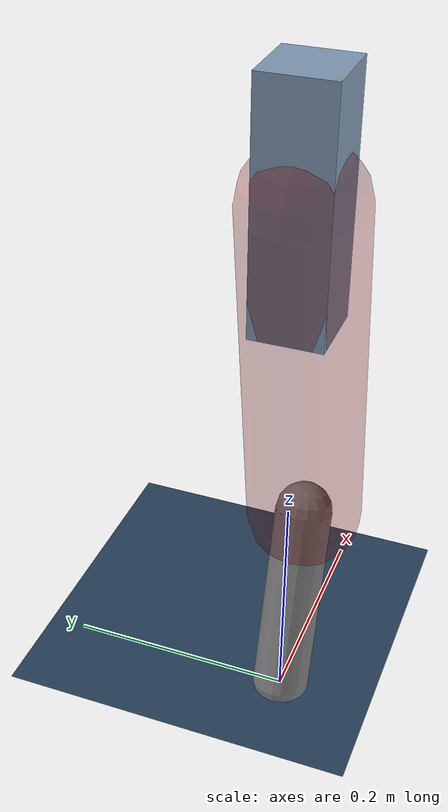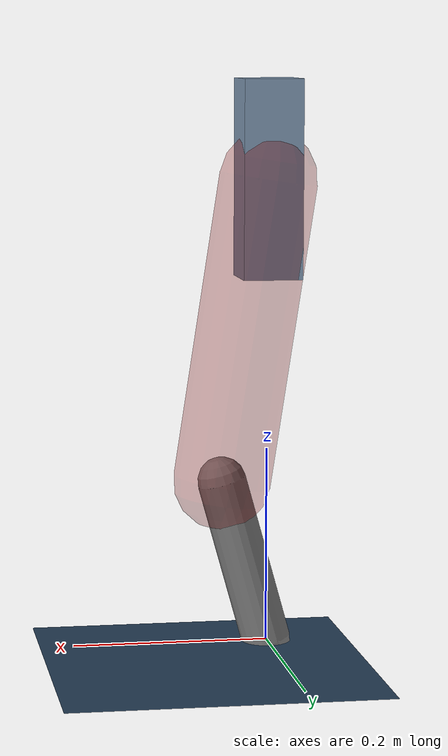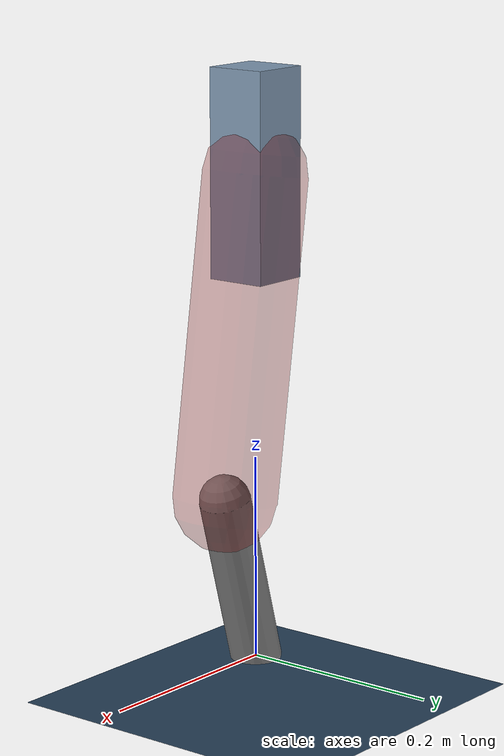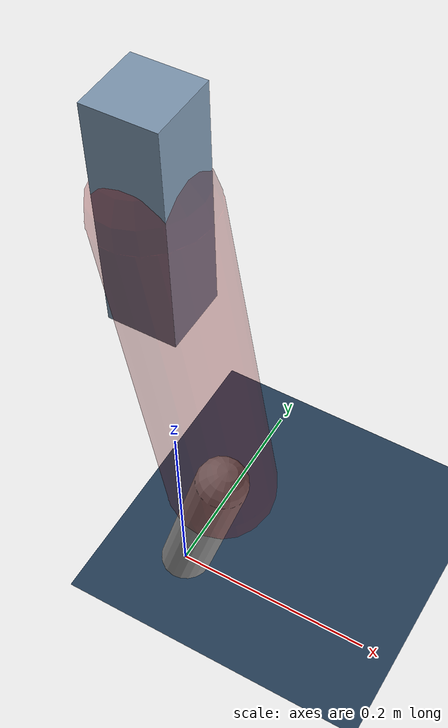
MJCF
<mujoco model="Hopper2D">
	<compiler inertiafromgeom="true" angle="radian" />
	<option timestep="0.001" integrator="implicit" cone="elliptic" solver="Newton" tolerance="1e-10" />

	<default>
		<geom contype="1" conaffinity="1" condim="3" friction="2 0.005 0.0001" solref="0.005 1" />
		<joint limited="true" damping="0.1" />
	</default>

	<asset>
		<texture name="skybox" type="skybox" builtin="gradient" rgb1=".4 .6 .8" rgb2="0 0 0" width="800" height="800" />
		<texture name="grid" type="2d" builtin="checker" rgb1=".1 .2 .3" rgb2=".2 .3 .4" width="300" height="300" mark="edge" markrgb=".2 .3 .4" />
		<material name="ground" texture="grid" texrepeat="1 1" texuniform="true" reflectance="0.1" />
		<material name="leg" rgba="0.5 0.6 0.7 1" />
	</asset>

	<worldbody>

		<geom name="floor" type="plane" size="5 5 0.25" material="ground" />

		<light directional="false" diffuse="0.8 0.8 0.8" specular="0.3 0.3 0.3" pos="0 0 2" dir="0 0 -1" />
		<light mode="targetbodycom" target="base" directional="false" diffuse="0.8 0.8 0.8" specular="0.3 0.3 0.3" pos="0 0 2" dir="0 0 -1" />

		<camera name="fixed" pos="0 -2 1" xyaxes="1 0 0 0 0 1" />
		<camera name="tracking" mode="trackcom" pos="0 -3 1" />

		<body name="root" pos="0 0 0.47575446377573205">
			<joint name="slide_x" type="slide" axis="1 0 0" range="-100 100" />
			<joint name="slide_z" type="slide" axis="0 0 1" range="0 10" />

			<body name="base" pos="0 0 0">
				<geom name="torso" type="box" size="0.03 0.03 0.1" mass="2.668" material="leg" />

				<body name="link1" pos="0 0 0" euler="0 1.4195405110234103 0">
					<joint type="hinge" axis="0 -1 0" pos="0 0 0" name="hinge1" limited="true" range="-3.14 3.14" stiffness="0" damping="0.1" />
					<geom name="thigh" type="capsule" fromto="0 0 0 0.31153363163194525 0 0" size="0.05" rgba="0.5 0 0 0.3" mass="1.0200408054062522" />

					<body name="link2" pos="0.31153363163194525 0 0" euler="0 0.4240657567719835 0">
						<joint type="hinge" axis="0 -1 0" pos="0 0 0" name="hinge2" limited="true" range="-3.14 3.14" stiffness="0" damping="0.1" />
						<geom name="shank" type="capsule" fromto="0 0 0 0.1742208321437868 0 0" size="0.025" mass="0.3788987489294081" />

					</body>
				</body>
			</body>
		</body>
	</worldbody>

	<actuator>
		<motor name="torque1" joint="hinge1" ctrlrange="-97.29104070352386 97.29104070352386" ctrllimited="true" gear="1" />
		<motor name="torque2" joint="hinge2" ctrlrange="-19.154563435379554 19.154563435379554" ctrllimited="true" gear="1" />
	</actuator>
</mujoco>
